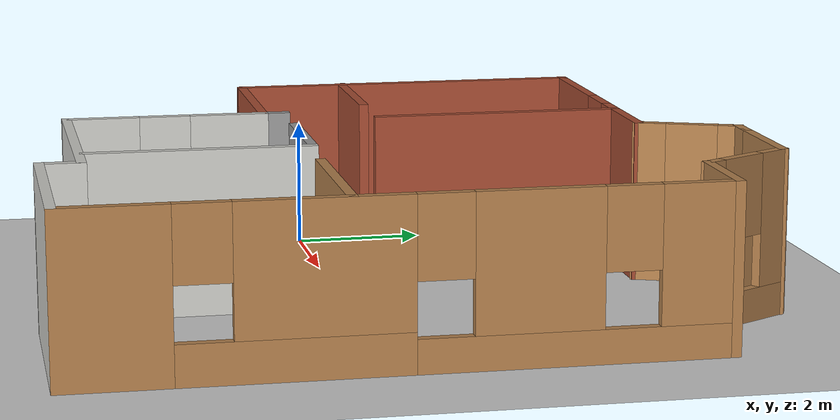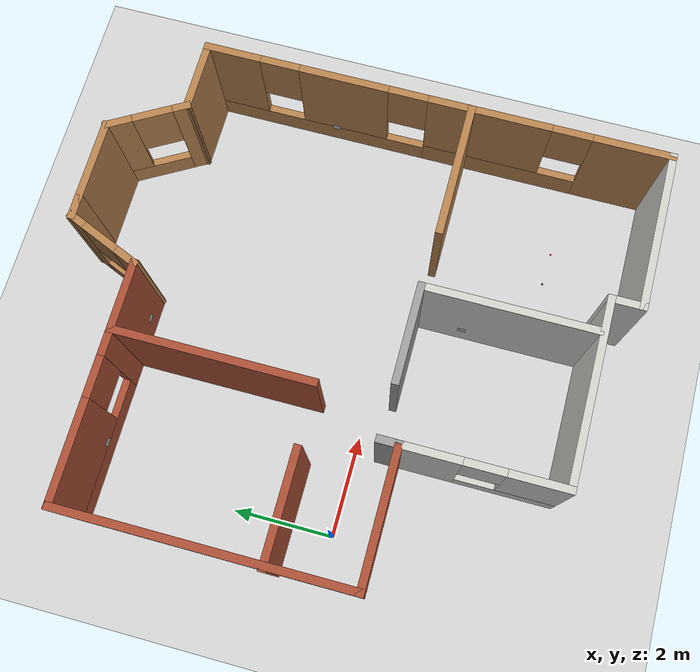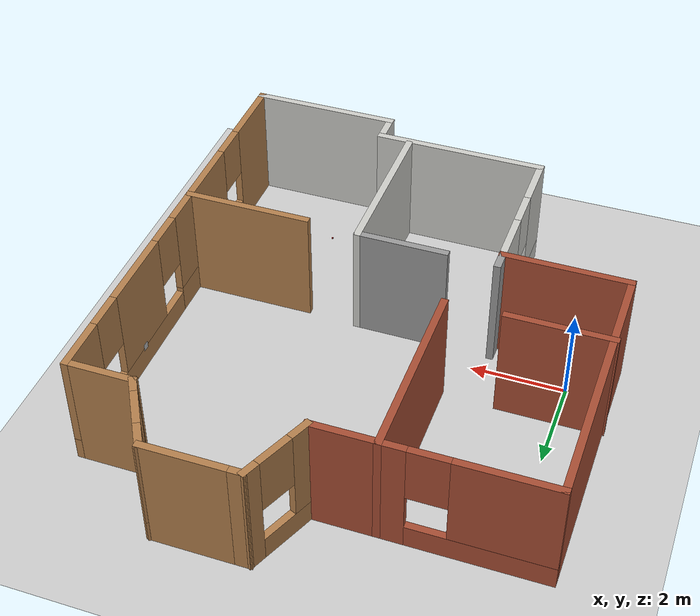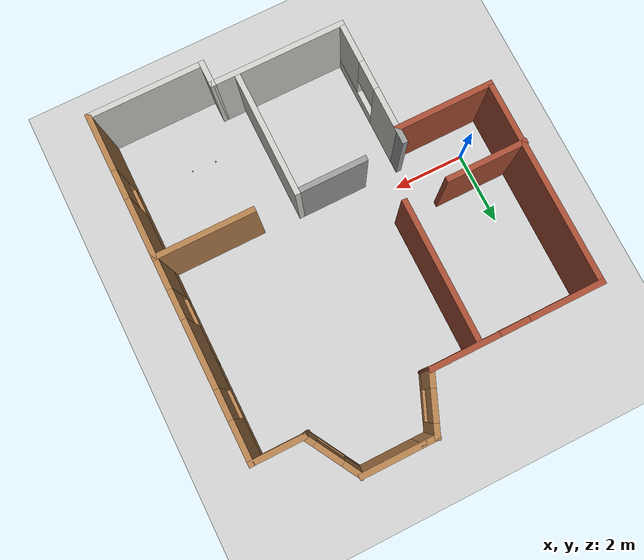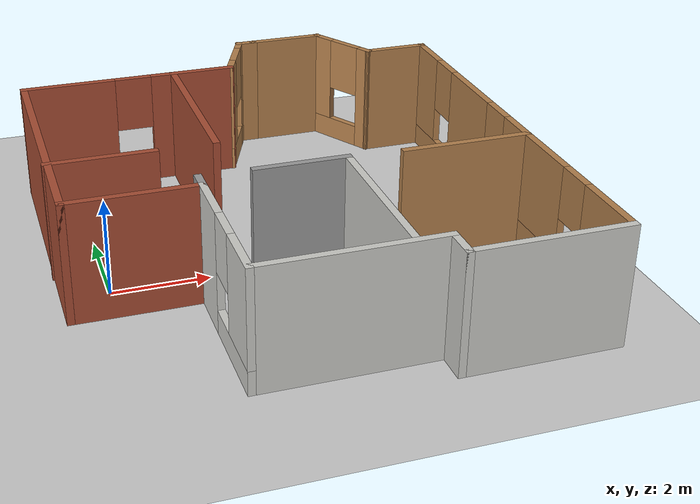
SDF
<sdf version="1.6">
 <world name="default">
  <light name="sun" type="directional">
   <pose>0 0 10 0 -0 0</pose>
   <diffuse>0.8 0.8 0.8 1</diffuse>
   <specular>0.1 0.1 0.1 1</specular>
   <attenuation>
    <range>1000</range>
    <constant>0.9</constant>
    <linear>0.01</linear>
    <quadratic>0.001</quadratic>
   </attenuation>
   <direction>-0.5 0.5 -1</direction>
  </light>
  <model name="ground_plane">
   <static>1</static>
   <link name="link">
    <collision name="collision">
     <geometry><plane><normal>0 0 1</normal><size>100 100</size></plane></geometry>
     <surface><friction><ode><mu>100</mu><mu2>50</mu2></ode></friction></surface>
    </collision>
    <visual name="visual">
     <cast_shadows>0</cast_shadows>
     <geometry><plane><normal>0 0 1</normal><size>100 100</size></plane></geometry>
     <material>
      <script><uri>file://media/materials/scripts/gazebo.material</uri><name>Gazebo/Grey</name></script>
     </material>
    </visual>
   </link>
  </model>
  <gravity>0 0 -9.8</gravity>
  <magnetic_field>6e-06 2.3e-05 -4.2e-05</magnetic_field>
  <atmosphere type="adiabatic"/>
  <physics name="default_physics" default="0" type="ode">
   <max_step_size>0.001</max_step_size>
   <real_time_factor>1</real_time_factor>
   <real_time_update_rate>1000</real_time_update_rate>
  </physics>
  <scene><ambient>0.4 0.4 0.4 1</ambient><background>0.7 0.7 0.7 1</background><shadows>1</shadows></scene>
  <spherical_coordinates>
   <surface_model>EARTH_WGS84</surface_model>
   <latitude_deg>0</latitude_deg>
   <longitude_deg>0</longitude_deg>
   <elevation>0</elevation>
   <heading_deg>0</heading_deg>
  </spherical_coordinates>
  <model name="simple_house">
   <pose>3.7461 0.84923 0 0 -0 0</pose>
   <link name="Wall_10">
    <collision name="Wall_10_Collision">
     <geometry><box><size>1.5 0.15 2.5</size></box></geometry>
     <pose>0 0 1.25 0 -0 0</pose>
    </collision>
    <visual name="Wall_10_Visual">
     <pose>0 0 1.25 0 -0 0</pose>
     <geometry><box><size>1.5 0.15 2.5</size></box></geometry>
     <material>
      <script><uri>file://media/materials/scripts/gazebo.material</uri><name>Gazebo/Wood</name></script>
      <ambient>1 1 1 1</ambient>
     </material>
    </visual>
    <pose>3.99207 3.96845 0 0 -0 3.14159</pose>
   </link>
   <link name="Wall_11">
    <pose>2.91707 4.66127 0 0 -0 2.0944</pose>
    <visual name="Wall_11_Visual_0">
     <pose>-0.69155 0 1.25 0 -0 0</pose>
     <geometry><box><size>0.3669 0.15 2.5</size></box></geometry>
     <material>
      <script><uri>file://media/materials/scripts/gazebo.material</uri><name>Gazebo/Wood</name></script>
      <ambient>1 1 1 1</ambient>
     </material>
    </visual>
    <collision name="Wall_11_Collision_0">
     <geometry><box><size>0.3669 0.15 2.5</size></box></geometry>
     <pose>-0.69155 0 1.25 0 -0 0</pose>
    </collision>
    <visual name="Wall_11_Visual_1">
     <pose>0.18345 0 0.25 0 -0 0</pose>
     <geometry><box><size>1.3831 0.15 0.5</size></box></geometry>
     <material>
      <script><uri>file://media/materials/scripts/gazebo.material</uri><name>Gazebo/Wood</name></script>
      <ambient>1 1 1 1</ambient>
     </material>
    </visual>
    <collision name="Wall_11_Collision_1">
     <geometry><box><size>1.3831 0.15 0.5</size></box></geometry>
     <pose>0.18345 0 0.25 0 -0 0</pose>
    </collision>
    <visual name="Wall_11_Visual_2">
     <pose>0.58345 0 1.5 0 -0 0</pose>
     <geometry><box><size>0.5831 0.15 2</size></box></geometry>
     <material>
      <script><uri>file://media/materials/scripts/gazebo.material</uri><name>Gazebo/Wood</name></script>
      <ambient>1 1 1 1</ambient>
     </material>
    </visual>
    <collision name="Wall_11_Collision_2">
     <geometry><box><size>0.5831 0.15 2</size></box></geometry>
     <pose>0.58345 0 1.5 0 -0 0</pose>
    </collision>
    <visual name="Wall_11_Visual_3">
     <pose>-0.1081 0 1.9 0 -0 0</pose>
     <geometry><box><size>0.8 0.15 1.2</size></box></geometry>
     <material>
      <script><uri>file://media/materials/scripts/gazebo.material</uri><name>Gazebo/Wood</name></script>
      <ambient>1 1 1 1</ambient>
     </material>
    </visual>
    <collision name="Wall_11_Collision_3">
     <geometry><box><size>0.8 0.15 1.2</size></box></geometry>
     <pose>-0.1081 0 1.9 0 -0 0</pose>
    </collision>
   </link>
   <link name="Wall_12">
    <collision name="Wall_12_Collision">
     <geometry><box><size>1.75 0.15 2.5</size></box></geometry>
     <pose>0 0 1.25 0 -0 0</pose>
    </collision>
    <visual name="Wall_12_Visual">
     <pose>0 0 1.25 0 -0 0</pose>
     <geometry><box><size>1.75 0.15 2.5</size></box></geometry>
     <material>
      <script><uri>file://media/materials/scripts/gazebo.material</uri><name>Gazebo/Wood</name></script>
      <ambient>1 1 1 1</ambient>
     </material>
    </visual>
    <pose>1.71707 5.3541 0 0 -0 3.14159</pose>
   </link>
   <link name="Wall_13">
    <collision name="Wall_13_Collision">
     <geometry><box><size>0.5 0.15 2.5</size></box></geometry>
     <pose>0 0 1.25 0 -0 0</pose>
    </collision>
    <visual name="Wall_13_Visual">
     <pose>0 0 1.25 0 -0 0</pose>
     <geometry><box><size>0.5 0.15 2.5</size></box></geometry>
     <material>
      <script><uri>file://media/materials/scripts/gazebo.material</uri><name>Gazebo/Wood</name></script>
      <ambient>1 1 1 1</ambient>
     </material>
    </visual>
    <pose>0.742068 5.3541 0 0 -0 3.14159</pose>
   </link>
   <link name="Wall_14">
    <pose>0.267068 4.63627 0 0 0 -1.96667</pose>
    <visual name="Wall_14_Visual_0">
     <pose>-0.657478 0 1.25 0 -0 0</pose>
     <geometry><box><size>0.391021 0.15 2.5</size></box></geometry>
     <material>
      <script><uri>file://media/materials/scripts/gazebo.material</uri><name>Gazebo/Wood</name></script>
      <ambient>1 1 1 1</ambient>
     </material>
    </visual>
    <collision name="Wall_14_Collision_0">
     <geometry><box><size>0.391021 0.15 2.5</size></box></geometry>
     <pose>-0.657478 0 1.25 0 -0 0</pose>
    </collision>
    <visual name="Wall_14_Visual_1">
     <pose>0.195511 0 0.25 0 -0 0</pose>
     <geometry><box><size>1.31496 0.15 0.5</size></box></geometry>
     <material>
      <script><uri>file://media/materials/scripts/gazebo.material</uri><name>Gazebo/Wood</name></script>
      <ambient>1 1 1 1</ambient>
     </material>
    </visual>
    <collision name="Wall_14_Collision_1">
     <geometry><box><size>1.31496 0.15 0.5</size></box></geometry>
     <pose>0.195511 0 0.25 0 -0 0</pose>
    </collision>
    <visual name="Wall_14_Visual_2">
     <pose>0.595511 0 1.5 0 -0 0</pose>
     <geometry><box><size>0.514956 0.15 2</size></box></geometry>
     <material>
      <script><uri>file://media/materials/scripts/gazebo.material</uri><name>Gazebo/Wood</name></script>
      <ambient>1 1 1 1</ambient>
     </material>
    </visual>
    <collision name="Wall_14_Collision_2">
     <geometry><box><size>0.514956 0.15 2</size></box></geometry>
     <pose>0.595511 0 1.5 0 -0 0</pose>
    </collision>
    <visual name="Wall_14_Visual_3">
     <pose>-0.061967 0 1.9 0 -0 0</pose>
     <geometry><box><size>0.8 0.15 1.2</size></box></geometry>
     <material>
      <script><uri>file://media/materials/scripts/gazebo.material</uri><name>Gazebo/Wood</name></script>
      <ambient>1 1 1 1</ambient>
     </material>
    </visual>
    <collision name="Wall_14_Collision_3">
     <geometry><box><size>0.8 0.15 1.2</size></box></geometry>
     <pose>-0.061967 0 1.9 0 -0 0</pose>
    </collision>
   </link>
   <link name="Wall_16">
    <collision name="Wall_16_Collision">
     <geometry><box><size>4 0.15 2.5</size></box></geometry>
     <pose>0 0 1.25 0 -0 0</pose>
    </collision>
    <visual name="Wall_16_Visual">
     <pose>0 0 1.25 0 -0 0</pose>
     <geometry><box><size>4 0.15 2.5</size></box></geometry>
     <material>
      <script><uri>file://media/materials/scripts/gazebo.material</uri><name>Gazebo/Bricks</name></script>
      <ambient>1 1 1 1</ambient>
     </material>
    </visual>
    <pose>-1.34369 1.99345 0 0 0 -1.5708</pose>
   </link>
   <link name="Wall_18">
    <collision name="Wall_18_Collision">
     <geometry><box><size>2.25 0.15 2.5</size></box></geometry>
     <pose>0 0 1.25 0 -0 0</pose>
    </collision>
    <visual name="Wall_18_Visual">
     <pose>0 0 1.25 0 -0 0</pose>
     <geometry><box><size>2.25 0.15 2.5</size></box></geometry>
     <material>
      <script><uri>file://media/materials/scripts/gazebo.material</uri><name>Gazebo/Bricks</name></script>
      <ambient>1 1 1 1</ambient>
     </material>
    </visual>
    <pose>-3.61707 0.029864 0 0 -0 3.14159</pose>
   </link>
   <link name="Wall_2">
    <pose>-2.33293 3.91845 0 0 -0 3.14159</pose>
    <visual name="Wall_2_Visual_0">
     <pose>-1.42335 0 1.25 0 -0 0</pose>
     <geometry><box><size>1.90329 0.15 2.5</size></box></geometry>
     <material>
      <script><uri>file://media/materials/scripts/gazebo.material</uri><name>Gazebo/Bricks</name></script>
      <ambient>1 1 1 1</ambient>
     </material>
    </visual>
    <collision name="Wall_2_Collision_0">
     <geometry><box><size>1.90329 0.15 2.5</size></box></geometry>
     <pose>-1.42335 0 1.25 0 -0 0</pose>
    </collision>
    <visual name="Wall_2_Visual_1">
     <pose>0.951647 0 0.25 0 -0 0</pose>
     <geometry><box><size>2.84671 0.15 0.5</size></box></geometry>
     <material>
      <script><uri>file://media/materials/scripts/gazebo.material</uri><name>Gazebo/Bricks</name></script>
      <ambient>1 1 1 1</ambient>
     </material>
    </visual>
    <collision name="Wall_2_Collision_1">
     <geometry><box><size>2.84671 0.15 0.5</size></box></geometry>
     <pose>0.951647 0 0.25 0 -0 0</pose>
    </collision>
    <visual name="Wall_2_Visual_2">
     <pose>1.35165 0 1.5 0 -0 0</pose>
     <geometry><box><size>2.04671 0.15 2</size></box></geometry>
     <material>
      <script><uri>file://media/materials/scripts/gazebo.material</uri><name>Gazebo/Bricks</name></script>
      <ambient>1 1 1 1</ambient>
     </material>
    </visual>
    <collision name="Wall_2_Collision_2">
     <geometry><box><size>2.04671 0.15 2</size></box></geometry>
     <pose>1.35165 0 1.5 0 -0 0</pose>
    </collision>
    <visual name="Wall_2_Visual_3">
     <pose>-0.071707 0 1.9 0 -0 0</pose>
     <geometry><box><size>0.8 0.15 1.2</size></box></geometry>
     <material>
      <script><uri>file://media/materials/scripts/gazebo.material</uri><name>Gazebo/Bricks</name></script>
      <ambient>1 1 1 1</ambient>
     </material>
    </visual>
    <collision name="Wall_2_Collision_3">
     <geometry><box><size>0.8 0.15 1.2</size></box></geometry>
     <pose>-0.071707 0 1.9 0 -0 0</pose>
    </collision>
   </link>
   <link name="Wall_22">
    <collision name="Wall_22_Collision">
     <geometry><box><size>3.5 0.15 2.5</size></box></geometry>
     <pose>0 0 1.25 0 -0 0</pose>
    </collision>
    <visual name="Wall_22_Visual">
     <pose>0 0 1.25 0 -0 0</pose>
     <geometry><box><size>3.5 0.15 2.5</size></box></geometry>
     <material>
      <script><uri>file://media/materials/scripts/gazebo.material</uri><name>Gazebo/CeilingTiled</name></script>
      <ambient>1 1 1 1</ambient>
     </material>
    </visual>
    <pose>0.907655 -3.01847 0 0 0 -1.5708</pose>
   </link>
   <link name="Wall_25">
    <collision name="Wall_25_Collision">
     <geometry><box><size>2.75 0.15 2.5</size></box></geometry>
     <pose>0 0 1.25 0 -0 0</pose>
    </collision>
    <visual name="Wall_25_Visual">
     <pose>0 0 1.25 0 -0 0</pose>
     <geometry><box><size>2.75 0.15 2.5</size></box></geometry>
     <material>
      <script><uri>file://media/materials/scripts/gazebo.material</uri><name>Gazebo/Wood</name></script>
      <ambient>1 1 1 1</ambient>
     </material>
    </visual>
    <pose>3.36429 -1.41197 0 0 -0 0</pose>
   </link>
   <link name="Wall_27">
    <collision name="Wall_27_Collision">
     <geometry><box><size>2 0.15 2.5</size></box></geometry>
     <pose>0 0 1.25 0 -0 0</pose>
    </collision>
    <visual name="Wall_27_Visual">
     <pose>0 0 1.25 0 -0 0</pose>
     <geometry><box><size>2 0.15 2.5</size></box></geometry>
     <material>
      <script><uri>file://media/materials/scripts/gazebo.material</uri><name>Gazebo/Grey</name></script>
      <ambient>1 1 1 1</ambient>
     </material>
    </visual>
    <pose>-0.017345 -1.34347 0 0 -0 3.14159</pose>
   </link>
   <link name="Wall_29">
    <collision name="Wall_29_Collision">
     <geometry><box><size>0.5 0.15 2.5</size></box></geometry>
     <pose>0 0 1.25 0 -0 0</pose>
    </collision>
    <visual name="Wall_29_Visual">
     <pose>0 0 1.25 0 -0 0</pose>
     <geometry><box><size>0.5 0.15 2.5</size></box></geometry>
     <material>
      <script><uri>file://media/materials/scripts/gazebo.material</uri><name>Gazebo/Grey</name></script>
      <ambient>1 1 1 1</ambient>
     </material>
    </visual>
    <pose>-2.03293 -1.50655 0 0 -0 1.5708</pose>
   </link>
   <link name="Wall_3">
    <collision name="Wall_3_Collision">
     <geometry><box><size>5.75 0.15 2.5</size></box></geometry>
     <pose>0 0 1.25 0 -0 0</pose>
    </collision>
    <visual name="Wall_3_Visual">
     <pose>0 0 1.25 0 -0 0</pose>
     <geometry><box><size>5.75 0.15 2.5</size></box></geometry>
     <material>
      <script><uri>file://media/materials/scripts/gazebo.material</uri><name>Gazebo/Bricks</name></script>
      <ambient>1 1 1 1</ambient>
     </material>
    </visual>
    <pose>-4.63293 1.11845 0 0 0 -1.5708</pose>
   </link>
   <link name="Wall_4">
    <collision name="Wall_4_Collision">
     <geometry><box><size>2.75 0.15 2.5</size></box></geometry>
     <pose>0 0 1.25 0 -0 0</pose>
    </collision>
    <visual name="Wall_4_Visual">
     <pose>0 0 1.25 0 -0 0</pose>
     <geometry><box><size>2.75 0.15 2.5</size></box></geometry>
     <material>
      <script><uri>file://media/materials/scripts/gazebo.material</uri><name>Gazebo/Bricks</name></script>
      <ambient>1 1 1 1</ambient>
     </material>
    </visual>
    <pose>-3.33293 -1.68155 0 0 -0 0</pose>
   </link>
   <link name="Wall_5">
    <pose>-2.03293 -3.23155 0 0 0 -1.5708</pose>
    <visual name="Wall_5_Visual_0">
     <pose>-1.00475 0 1.25 0 -0 0</pose>
     <geometry><box><size>1.24049 0.15 2.5</size></box></geometry>
     <material>
      <script><uri>file://media/materials/scripts/gazebo.material</uri><name>Gazebo/CeilingTiled</name></script>
      <ambient>1 1 1 1</ambient>
     </material>
    </visual>
    <collision name="Wall_5_Collision_0">
     <geometry><box><size>1.24049 0.15 2.5</size></box></geometry>
     <pose>-1.00475 0 1.25 0 -0 0</pose>
    </collision>
    <visual name="Wall_5_Visual_1">
     <pose>0.620246 0 0.25 0 -0 0</pose>
     <geometry><box><size>2.00951 0.15 0.5</size></box></geometry>
     <material>
      <script><uri>file://media/materials/scripts/gazebo.material</uri><name>Gazebo/CeilingTiled</name></script>
      <ambient>1 1 1 1</ambient>
     </material>
    </visual>
    <collision name="Wall_5_Collision_1">
     <geometry><box><size>2.00951 0.15 0.5</size></box></geometry>
     <pose>0.620246 0 0.25 0 -0 0</pose>
    </collision>
    <visual name="Wall_5_Visual_2">
     <pose>1.02025 0 1.5 0 -0 0</pose>
     <geometry><box><size>1.20951 0.15 2</size></box></geometry>
     <material>
      <script><uri>file://media/materials/scripts/gazebo.material</uri><name>Gazebo/CeilingTiled</name></script>
      <ambient>1 1 1 1</ambient>
     </material>
    </visual>
    <collision name="Wall_5_Collision_2">
     <geometry><box><size>1.20951 0.15 2</size></box></geometry>
     <pose>1.02025 0 1.5 0 -0 0</pose>
    </collision>
    <visual name="Wall_5_Visual_3">
     <pose>0.015492 0 1.9 0 -0 0</pose>
     <geometry><box><size>0.8 0.15 1.2</size></box></geometry>
     <material>
      <script><uri>file://media/materials/scripts/gazebo.material</uri><name>Gazebo/CeilingTiled</name></script>
      <ambient>1 1 1 1</ambient>
     </material>
    </visual>
    <collision name="Wall_5_Collision_3">
     <geometry><box><size>0.8 0.15 1.2</size></box></geometry>
     <pose>0.015492 0 1.9 0 -0 0</pose>
    </collision>
   </link>
   <link name="Wall_6">
    <collision name="Wall_6_Collision">
     <geometry><box><size>3.75 0.15 2.5</size></box></geometry>
     <pose>0 0 1.25 0 -0 0</pose>
    </collision>
    <visual name="Wall_6_Visual">
     <pose>0 0 1.25 0 -0 0</pose>
     <geometry><box><size>3.75 0.15 2.5</size></box></geometry>
     <material>
      <script><uri>file://media/materials/scripts/gazebo.material</uri><name>Gazebo/CeilingTiled</name></script>
      <ambient>1 1 1 1</ambient>
     </material>
    </visual>
    <pose>-0.232932 -4.78155 0 0 -0 0</pose>
   </link>
   <link name="Wall_7">
    <collision name="Wall_7_Collision">
     <geometry><box><size>0.75 0.15 2.5</size></box></geometry>
     <pose>0 0 1.25 0 -0 0</pose>
    </collision>
    <visual name="Wall_7_Visual">
     <pose>0 0 1.25 0 -0 0</pose>
     <geometry><box><size>0.75 0.15 2.5</size></box></geometry>
     <material>
      <script><uri>file://media/materials/scripts/gazebo.material</uri><name>Gazebo/CeilingTiled</name></script>
      <ambient>1 1 1 1</ambient>
     </material>
    </visual>
    <pose>1.56707 -5.08155 0 0 0 -1.5708</pose>
   </link>
   <link name="Wall_8">
    <collision name="Wall_8_Collision">
     <geometry><box><size>3.25 0.15 2.5</size></box></geometry>
     <pose>0 0 1.25 0 -0 0</pose>
    </collision>
    <visual name="Wall_8_Visual">
     <pose>0 0 1.25 0 -0 0</pose>
     <geometry><box><size>3.25 0.15 2.5</size></box></geometry>
     <material>
      <script><uri>file://media/materials/scripts/gazebo.material</uri><name>Gazebo/CeilingTiled</name></script>
      <ambient>1 1 1 1</ambient>
     </material>
    </visual>
    <pose>3.11707 -5.38155 0 0 -0 0</pose>
   </link>
   <link name="Wall_9">
    <pose>4.66707 -0.706546 0 0 -0 1.5708</pose>
    <visual name="Wall_9_Visual_0">
     <pose>-3.93263 0 1.25 0 -0 0</pose>
     <geometry><box><size>1.63474 0.15 2.5</size></box></geometry>
     <material>
      <script><uri>file://media/materials/scripts/gazebo.material</uri><name>Gazebo/Wood</name></script>
      <ambient>1 1 1 1</ambient>
     </material>
    </visual>
    <collision name="Wall_9_Collision_0">
     <geometry><box><size>1.63474 0.15 2.5</size></box></geometry>
     <pose>-3.93263 0 1.25 0 -0 0</pose>
    </collision>
    <visual name="Wall_9_Visual_1">
     <pose>-1.47681 0 0.3 0 -0 0</pose>
     <geometry><box><size>3.2769 0.15 0.6</size></box></geometry>
     <material>
      <script><uri>file://media/materials/scripts/gazebo.material</uri><name>Gazebo/Wood</name></script>
      <ambient>1 1 1 1</ambient>
     </material>
    </visual>
    <collision name="Wall_9_Collision_1">
     <geometry><box><size>3.2769 0.15 0.6</size></box></geometry>
     <pose>-1.47681 0 0.3 0 -0 0</pose>
    </collision>
    <visual name="Wall_9_Visual_2">
     <pose>2.45582 0 0.25 0 -0 0</pose>
     <geometry><box><size>4.58836 0.15 0.5</size></box></geometry>
     <material>
      <script><uri>file://media/materials/scripts/gazebo.material</uri><name>Gazebo/Wood</name></script>
      <ambient>1 1 1 1</ambient>
     </material>
    </visual>
    <collision name="Wall_9_Collision_2">
     <geometry><box><size>4.58836 0.15 0.5</size></box></geometry>
     <pose>2.45582 0 0.25 0 -0 0</pose>
    </collision>
    <visual name="Wall_9_Visual_3">
     <pose>1.8724 0 1.5 0 -0 0</pose>
     <geometry><box><size>1.82152 0.15 2</size></box></geometry>
     <material>
      <script><uri>file://media/materials/scripts/gazebo.material</uri><name>Gazebo/Wood</name></script>
      <ambient>1 1 1 1</ambient>
     </material>
    </visual>
    <collision name="Wall_9_Collision_3">
     <geometry><box><size>1.82152 0.15 2</size></box></geometry>
     <pose>1.8724 0 1.5 0 -0 0</pose>
    </collision>
    <visual name="Wall_9_Visual_4">
     <pose>4.16658 0 1.5 0 -0 0</pose>
     <geometry><box><size>1.16684 0.15 2</size></box></geometry>
     <material>
      <script><uri>file://media/materials/scripts/gazebo.material</uri><name>Gazebo/Wood</name></script>
      <ambient>1 1 1 1</ambient>
     </material>
    </visual>
    <collision name="Wall_9_Collision_4">
     <geometry><box><size>1.16684 0.15 2</size></box></geometry>
     <pose>4.16658 0 1.5 0 -0 0</pose>
    </collision>
    <visual name="Wall_9_Visual_5">
     <pose>-1.07681 0 1.55 0 -0 0</pose>
     <geometry><box><size>2.4769 0.15 1.9</size></box></geometry>
     <material>
      <script><uri>file://media/materials/scripts/gazebo.material</uri><name>Gazebo/Wood</name></script>
      <ambient>1 1 1 1</ambient>
     </material>
    </visual>
    <collision name="Wall_9_Collision_5">
     <geometry><box><size>2.4769 0.15 1.9</size></box></geometry>
     <pose>-1.07681 0 1.55 0 -0 0</pose>
    </collision>
    <visual name="Wall_9_Visual_6">
     <pose>3.18316 0 1.9 0 -0 0</pose>
     <geometry><box><size>0.8 0.15 1.2</size></box></geometry>
     <material>
      <script><uri>file://media/materials/scripts/gazebo.material</uri><name>Gazebo/Wood</name></script>
      <ambient>1 1 1 1</ambient>
     </material>
    </visual>
    <collision name="Wall_9_Collision_6">
     <geometry><box><size>0.8 0.15 1.2</size></box></geometry>
     <pose>3.18316 0 1.9 0 -0 0</pose>
    </collision>
    <visual name="Wall_9_Visual_7">
     <pose>0.561642 0 1.9 0 -0 0</pose>
     <geometry><box><size>0.8 0.15 1.2</size></box></geometry>
     <material>
      <script><uri>file://media/materials/scripts/gazebo.material</uri><name>Gazebo/Wood</name></script>
      <ambient>1 1 1 1</ambient>
     </material>
    </visual>
    <collision name="Wall_9_Collision_7">
     <geometry><box><size>0.8 0.15 1.2</size></box></geometry>
     <pose>0.561642 0 1.9 0 -0 0</pose>
    </collision>
    <visual name="Wall_9_Visual_8">
     <pose>-2.71526 0 1.95 0 -0 0</pose>
     <geometry><box><size>0.8 0.15 1.1</size></box></geometry>
     <material>
      <script><uri>file://media/materials/scripts/gazebo.material</uri><name>Gazebo/Wood</name></script>
      <ambient>1 1 1 1</ambient>
     </material>
    </visual>
    <collision name="Wall_9_Collision_8">
     <geometry><box><size>0.8 0.15 1.1</size></box></geometry>
     <pose>-2.71526 0 1.95 0 -0 0</pose>
    </collision>
   </link>
   <static>1</static>
  </model>
  <model name="Tag0">
   <static>1</static>
   <link name="link">
    <pose>0 0 0.1 0 -0 0</pose>
    <collision name="collision"><geometry><box><size>0.1615 0.001 0.1615</size></box></geometry></collision>
    <visual name="visual">
     <cast_shadows>0</cast_shadows>
     <geometry><box><size>0.1615 0.001 0.1615</size></box></geometry>
     <material>
      <script>
       <uri>model://Tag0/materials/scripts</uri>
       <uri>model://Tag0/materials/textures</uri>
       <name>vrc/Tag0</name>
      </script>
     </material>
    </visual>
   </link>
   <pose>4.57278 -1.44052 0.5 0 -0 1.5708</pose>
  </model>
  <model name="Tag1">
   <static>1</static>
   <link name="link">
    <pose>0 0 0.1 0 -0 0</pose>
    <collision name="collision"><geometry><box><size>0.1615 0.001 0.1615</size></box></geometry></collision>
    <visual name="visual">
     <cast_shadows>0</cast_shadows>
     <geometry><box><size>0.1615 0.001 0.1615</size></box></geometry>
     <material>
      <script>
       <uri>model://Tag1/materials/scripts</uri>
       <uri>model://Tag1/materials/textures</uri>
       <name>vrc/Tag1</name>
      </script>
     </material>
    </visual>
   </link>
   <pose>0.587927 4.68972 0.5 0 -0 0</pose>
  </model>
  <model name="Tag2">
   <static>1</static>
   <link name="link">
    <pose>0 0 0.1 0 1.57 0</pose>
    <collision name="collision"><geometry><box><size>0.1615 0.001 0.1615</size></box></geometry></collision>
    <visual name="visual">
     <cast_shadows>0</cast_shadows>
     <geometry><box><size>0.1615 0.001 0.1615</size></box></geometry>
     <material>
      <script>
       <uri>model://Tag2/materials/scripts</uri>
       <uri>model://Tag2/materials/textures</uri>
       <name>vrc/Tag2</name>
      </script>
     </material>
    </visual>
   </link>
   <pose>3.19818 4.6892 0.5 0 -0 0</pose>
  </model>
  <model name="Tag3">
   <static>1</static>
   <link name="link">
    <pose>0 0 0.1 0 -0 1.57</pose>
    <collision name="collision"><geometry><box><size>0.1615 0.001 0.1615</size></box></geometry></collision>
    <visual name="visual">
     <cast_shadows>0</cast_shadows>
     <geometry><box><size>0.1615 0.001 0.1615</size></box></geometry>
     <material>
      <script>
       <uri>model://Tag3/materials/scripts</uri>
       <uri>model://Tag3/materials/textures</uri>
       <name>vrc/Tag3</name>
      </script>
     </material>
    </visual>
   </link>
   <pose>8.28539 2.19408 0.5 0 -0 0</pose>
  </model>
  <model name="black_box">
   <link name="link_2">
    <inertial>
     <mass>3.551e-05</mass>
     <inertia><ixx>1e-08</ixx><ixy>0</ixy><ixz>0</ixz><iyy>1e-08</iyy><iyz>0</iyz><izz>1e-08</izz></inertia>
    </inertial>
    <visual name="ModelPreview_1::link_2::visual_2">
     <geometry><box><size>0.031439 0.03 0.03</size></box></geometry>
     <material>
      <lighting>1</lighting>
      <script><uri>file://media/materials/scripts/gazebo.material</uri><name>Gazebo/Grey</name></script>
      <ambient>0.3 0.3 0.3 1</ambient>
      <diffuse>0.7 0.7 0.7 1</diffuse>
      <specular>0.01 0.01 0.01 1</specular>
      <emissive>0 0 0 1</emissive>
      <shader type="vertex"><normal_map>__default__</normal_map></shader>
     </material>
    </visual>
    <visual name="visual">
     <geometry><box><size>0.03 0.03 0.03</size></box></geometry>
     <material>
      <lighting>1</lighting>
      <script><uri>file://media/materials/scripts/gazebo.material</uri><name>Gazebo/Red</name></script>
      <ambient>0 0 0 1</ambient>
      <diffuse>0 0 0 1</diffuse>
      <specular>0 0 0 1</specular>
      <emissive>0 0 0 1</emissive>
      <shader type="vertex"><normal_map>__default__</normal_map></shader>
     </material>
    </visual>
    <visual name="ModelPreview_1::link_2::visual_1">
     <geometry><box><size>0.031439 0.03 0.03</size></box></geometry>
     <material>
      <lighting>1</lighting>
      <script><uri>file://media/materials/scripts/gazebo.material</uri><name>Gazebo/Grey</name></script>
      <ambient>0.3 0.3 0.3 1</ambient>
      <diffuse>0.7 0.7 0.7 1</diffuse>
      <specular>0.01 0.01 0.01 1</specular>
      <emissive>0 0 0 1</emissive>
      <shader type="vertex"><normal_map>__default__</normal_map></shader>
     </material>
    </visual>
    <collision name="collision">
     <geometry><box><size>0.031439 0.028322 0.0399</size></box></geometry>
     <surface>
      <friction>
       <ode><mu>1</mu><mu2>1</mu2><fdir1>0 0 0</fdir1><slip1>0</slip1><slip2>0</slip2></ode>
       <torsional>
        <coefficient>1</coefficient>
        <patch_radius>0</patch_radius>
        <surface_radius>0</surface_radius>
        <use_patch_radius>1</use_patch_radius>
        <ode><slip>0</slip></ode>
       </torsional>
      </friction>
      <bounce><restitution_coefficient>0</restitution_coefficient><threshold>1e+06</threshold></bounce>
      <contact>
       <collide_without_contact>0</collide_without_contact>
       <collide_without_contact_bitmask>1</collide_without_contact_bitmask>
       <collide_bitmask>1</collide_bitmask>
       <ode>
        <soft_cfm>0</soft_cfm>
        <soft_erp>0.2</soft_erp>
        <kp>1e+13</kp>
        <kd>1</kd>
        <max_vel>0.01</max_vel>
        <min_depth>0</min_depth>
       </ode>
       <bullet>
        <split_impulse>1</split_impulse>
        <split_impulse_penetration_threshold>-0.01</split_impulse_penetration_threshold>
        <soft_cfm>0</soft_cfm>
        <soft_erp>0.2</soft_erp>
        <kp>1e+13</kp>
        <kd>1</kd>
       </bullet>
      </contact>
     </surface>
    </collision>
   </link>
   <static>0</static>
   <pose>6.09534 -2.84855 0.194941 1.6e-05 -5.2e-05 -0.000117</pose>
  </model>
  <model name="red_ball">
   <link name="link_3">
    <inertial>
     <mass>4.279e-05</mass>
     <inertia><ixx>1e-08</ixx><ixy>0</ixy><ixz>0</ixz><iyy>1e-08</iyy><iyz>0</iyz><izz>1e-08</izz></inertia>
    </inertial>
    <visual name="ModelPreview_6::link_3::visual_3">
     <geometry><sphere><radius>0.017485</radius></sphere></geometry>
     <material>
      <lighting>1</lighting>
      <script><uri>file://media/materials/scripts/gazebo.material</uri><name>Gazebo/Red</name></script>
      <ambient>0.3 0.3 0.3 1</ambient>
      <diffuse>0.7 0 0.7 1</diffuse>
      <specular>0.7 0.01 0.01 1</specular>
      <emissive>0 0 0 1</emissive>
      <shader type="vertex"><normal_map>__default__</normal_map></shader>
     </material>
    </visual>
    <visual name="ModelPreview_6::link_3::visual_1">
     <geometry><sphere><radius>0.017485</radius></sphere></geometry>
     <material>
      <lighting>1</lighting>
      <script><uri>file://media/materials/scripts/gazebo.material</uri><name>Gazebo/Red</name></script>
      <ambient>0.3 0.3 0.3 1</ambient>
      <diffuse>0.7 0.7 0.7 1</diffuse>
      <specular>0.7 0.01 0.01 1</specular>
      <emissive>0 0 0 1</emissive>
      <shader type="vertex"><normal_map>__default__</normal_map></shader>
     </material>
    </visual>
    <visual name="ModelPreview_6::link_3::visual_4">
     <geometry><sphere><radius>0.017485</radius></sphere></geometry>
     <material>
      <lighting>1</lighting>
      <script><uri>file://media/materials/scripts/gazebo.material</uri><name>Gazebo/Red</name></script>
      <ambient>0.3 0.3 0.3 1</ambient>
      <diffuse>0.7 0 0.7 1</diffuse>
      <specular>0.7 0.01 0.01 1</specular>
      <emissive>0 0 0 1</emissive>
      <shader type="vertex"><normal_map>__default__</normal_map></shader>
     </material>
    </visual>
    <visual name="ModelPreview_6::link_3::visual_5">
     <geometry><sphere><radius>0.017485</radius></sphere></geometry>
     <material>
      <lighting>1</lighting>
      <script><uri>file://media/materials/scripts/gazebo.material</uri><name>Gazebo/Red</name></script>
      <ambient>0.3 0.3 0.3 1</ambient>
      <diffuse>0.7 0 0.7 1</diffuse>
      <specular>0.7 0.01 0.01 1</specular>
      <emissive>0 0 0 1</emissive>
      <shader type="vertex"><normal_map>__default__</normal_map></shader>
     </material>
    </visual>
    <visual name="ModelPreview_6::link_3::visual_6">
     <geometry><sphere><radius>0.017485</radius></sphere></geometry>
     <material>
      <lighting>1</lighting>
      <script><uri>file://media/materials/scripts/gazebo.material</uri><name>Gazebo/Red</name></script>
      <ambient>0.3 0.3 0.3 1</ambient>
      <diffuse>0.7 0 0.7 1</diffuse>
      <specular>0.7 0.01 0.01 1</specular>
      <emissive>0 0 0 1</emissive>
      <shader type="vertex"><normal_map>__default__</normal_map></shader>
     </material>
    </visual>
    <visual name="ModelPreview_6::link_3::visual_7">
     <geometry><sphere><radius>0.017485</radius></sphere></geometry>
     <material>
      <lighting>1</lighting>
      <script><uri>file://media/materials/scripts/gazebo.material</uri><name>Gazebo/Red</name></script>
      <ambient>0.3 0.3 0.3 1</ambient>
      <diffuse>0.7 0 0.7 1</diffuse>
      <specular>0.7 0.01 0.01 1</specular>
      <emissive>0 0 0 1</emissive>
      <shader type="vertex"><normal_map>__default__</normal_map></shader>
     </material>
    </visual>
    <visual name="ModelPreview_6::link_3::visual_8">
     <geometry><sphere><radius>0.017485</radius></sphere></geometry>
     <material>
      <lighting>1</lighting>
      <script><uri>file://media/materials/scripts/gazebo.material</uri><name>Gazebo/Red</name></script>
      <ambient>0.3 0.3 0.3 1</ambient>
      <diffuse>0.7 0 0.7 1</diffuse>
      <specular>0.7 0.01 0.01 1</specular>
      <emissive>0 0 0 1</emissive>
      <shader type="vertex"><normal_map>__default__</normal_map></shader>
     </material>
    </visual>
    <visual name="ModelPreview_6::link_3::visual_9">
     <geometry><sphere><radius>0.017485</radius></sphere></geometry>
     <material>
      <lighting>1</lighting>
      <script><uri>file://media/materials/scripts/gazebo.material</uri><name>Gazebo/Red</name></script>
      <ambient>0.3 0.3 0.3 1</ambient>
      <diffuse>0.7 0 0.7 1</diffuse>
      <specular>0.7 0.01 0.01 1</specular>
      <emissive>0 0 0 1</emissive>
      <shader type="vertex"><normal_map>__default__</normal_map></shader>
     </material>
    </visual>
    <visual name="visual">
     <geometry><sphere><radius>0.017485</radius></sphere></geometry>
     <material>
      <lighting>1</lighting>
      <script><uri>file://media/materials/scripts/gazebo.material</uri><name>Gazebo/Red</name></script>
      <ambient>0.9 0 0 1</ambient>
      <diffuse>0.9 0 0 1</diffuse>
      <specular>0.9 0.01 0.01 1</specular>
      <emissive>0 0 0 1</emissive>
      <shader type="vertex"><normal_map>__default__</normal_map></shader>
     </material>
    </visual>
    <visual name="ModelPreview_6::link_3::visual_2">
     <geometry><sphere><radius>0.017485</radius></sphere></geometry>
     <material>
      <lighting>1</lighting>
      <script><uri>file://media/materials/scripts/gazebo.material</uri><name>Gazebo/Red</name></script>
      <ambient>0.3 0.3 0.3 1</ambient>
      <diffuse>0.7 0 0.7 1</diffuse>
      <specular>0.7 0.01 0.01 1</specular>
      <emissive>0 0 0 1</emissive>
      <shader type="vertex"><normal_map>__default__</normal_map></shader>
     </material>
    </visual>
    <collision name="collision">
     <geometry><sphere><radius>0.017485</radius></sphere></geometry>
     <surface>
      <friction>
       <ode><mu>1</mu><mu2>1</mu2><fdir1>0 0 0</fdir1><slip1>0</slip1><slip2>0</slip2></ode>
       <torsional>
        <coefficient>1</coefficient>
        <patch_radius>0</patch_radius>
        <surface_radius>0</surface_radius>
        <use_patch_radius>1</use_patch_radius>
        <ode><slip>0</slip></ode>
       </torsional>
      </friction>
      <bounce><restitution_coefficient>0</restitution_coefficient><threshold>1e+06</threshold></bounce>
      <contact>
       <collide_without_contact>0</collide_without_contact>
       <collide_without_contact_bitmask>1</collide_without_contact_bitmask>
       <collide_bitmask>1</collide_bitmask>
       <ode>
        <soft_cfm>0</soft_cfm>
        <soft_erp>0.2</soft_erp>
        <kp>1e+13</kp>
        <kd>1</kd>
        <max_vel>0.01</max_vel>
        <min_depth>0</min_depth>
       </ode>
       <bullet>
        <split_impulse>1</split_impulse>
        <split_impulse_penetration_threshold>-0.01</split_impulse_penetration_threshold>
        <soft_cfm>0</soft_cfm>
        <soft_erp>0.2</soft_erp>
        <kp>1e+13</kp>
        <kd>1</kd>
       </bullet>
      </contact>
     </surface>
    </collision>
   </link>
   <static>0</static>
   <pose>6.77359 -2.87911 0.192485 0 -0 0</pose>
  </model>
 </world>
</sdf>
